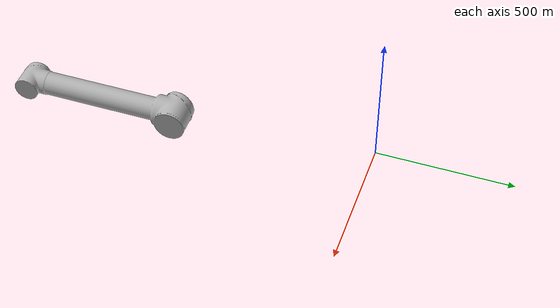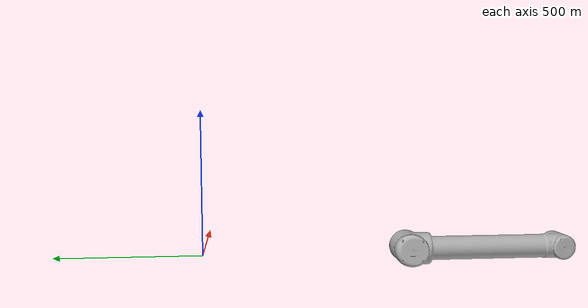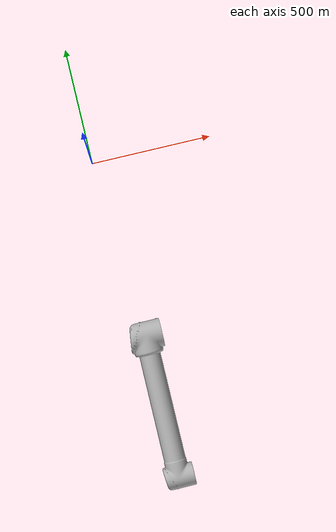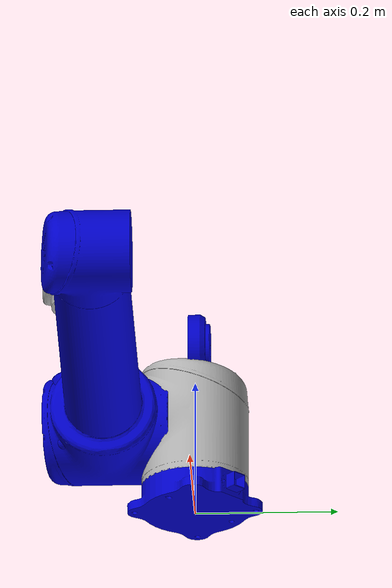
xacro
<?xml version="1.0"?>
<robot xmlns:xacro="http://www.ros.org/wiki/xacro"
       name="ur10" >

  <!-- common stuff -->
  <xacro:include filename="$(find ur_description)/urdf/gazebo.urdf.xacro" />

  <!-- ur10 -->
  <xacro:include filename="$(find ur_description)/urdf/ur10_limited.urdf.xacro" />

  <!-- arm -->
  <xacro:ur10_robot prefix="">
  </xacro:ur10_robot>

</robot>

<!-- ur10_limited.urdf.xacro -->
<robot xmlns:xacro="http://www.ros.org/wiki/xacro">

  <xacro:include filename="$(find ur_description)/urdf/ur10.transmission.xacro" />
  <xacro:include filename="$(find ur_description)/urdf/ur10.gazebo.xacro" />
  <xacro:include filename="$(find ur_description)/urdf/materials.urdf.xacro" />

  <property name="pi" value="3.14159265" />

  <!-- Inertia parameters -->
  <property name="base_mass" value="4.0" />
  <property name="shoulder_mass" value="3.7000" />
  <property name="upper_arm_mass" value="8.3930" />
  <property name="forearm_mass" value="2.2750" />
  <property name="wrist_1_mass" value="1.2190" />
  <property name="wrist_2_mass" value="1.2190" />
  <property name="wrist_3_mass" value="0.1879" />

  <property name="shoulder_cog" value="0.0 0.00193 -0.02561" />
  <property name="upper_arm_cog" value="0.0 -0.024201 0.2125" />
  <property name="forearm_cog" value="0.0 0.0265 0.11993" />
  <property name="wrist_1_cog" value="0.0 0.110949 0.01634" />
  <property name="wrist_2_cog" value="0.0 0.0018 0.11099" />
  <property name="wrist_3_cog" value="0.0 0.001159 0.0" />

  <!-- Kinematic model -->
  <property name="shoulder_height" value="0.128" />
  <property name="shoulder_offset" value="0.1704" />
  <property name="upper_arm_length" value="0.60186" />
  <property name="elbow_offset" value="0.12817" />
  <property name="forearm_length" value="0.56415" />
  <property name="wrist_1_length" value="0.11279" />
  <property name="wrist_2_length" value="0.11279" />
  <property name="wrist_3_length" value="0.0857" />

  <property name="shoulder_radius" value="0.060" />
  <property name="upper_arm_radius" value="0.054" />
  <property name="elbow_radius" value="0.060" />
  <property name="forearm_radius" value="0.040" />
  <property name="wrist_radius" value="0.045" />

  <!-- Collision model -->
  <property name="base_collision_length" value="0.160" />
  <property name="shoulder_collision_length" value="0.200" />
  <property name="shoulder_collision_offset" value="0.035" />
  <property name="elbow_collision_length" value="0.200" />
  <property name="elbow_collision_offset" value="0.035" />

  <xacro:macro name="ur10_robot" params="prefix">

  <link name="${prefix}base_link" >
    <visual>
      <geometry>
        <mesh filename="package://ur_description/meshes/ur10/visual/Base.stl" />
      </geometry>
      <origin xyz="0.0 0.0 0.003" rpy="0.0 0.0 ${3.0 * pi / 4.0}" />
      <material name="UR/Blue" />
    </visual>

    <collision>
      <geometry>
        <mesh filename="package://ur_description/meshes/ur10/collision/Base.stl" />
      </geometry>
      <origin xyz="0.0 0.0 0.003" rpy="0.0 0.0 ${3.0 * pi / 4.0}" />
    </collision>

    <inertial>
      <mass value="${base_mass}" />
      <inertia ixx="1.0" ixy="0.0" ixz="0.0" iyy="1.0" iyz="0.0" izz="1.0"/>
    </inertial>
  </link>

  <joint name="${prefix}shoulder_pan_joint" type="revolute">
    <parent link="${prefix}base_link" />
    <child link = "${prefix}shoulder_link" />
    <origin xyz="0.0 0.0 ${shoulder_height}" rpy="0.0 0.0 0.0" />
    <axis xyz="0.0 0.0 1.0" />
    <limit lower="${pi}" upper="${pi}" effort="330.0" velocity="2.16"/>
    <dynamics damping="1.2" friction="0.0"/>
  </joint>

  <link name="${prefix}shoulder_link">
    <visual>
      <geometry>
          <mesh filename="package://ur_description/meshes/ur10/visual/Shoulder.stl" />
      </geometry>
      <material name="UR/Grey" />
    </visual>

    <collision>
      <geometry>
        <mesh filename="package://ur_description/meshes/ur10/collision/Shoulder.stl" />
      </geometry>
    </collision>

    <inertial>
      <mass value="${shoulder_mass}" />
      <inertia ixx="1.0" ixy="0.0" ixz="0.0" iyy="1.0" iyz="0.0" izz="1.0"/>
      <origin xyz="${shoulder_cog}" rpy="0.0 0.0 0.0" />
    </inertial>
  </link>

  <joint name="${prefix}shoulder_lift_joint" type="revolute">
    <parent link="${prefix}shoulder_link" />
    <child link = "${prefix}upper_arm_link" />
    <origin xyz="0.0 ${shoulder_offset} 0.0" rpy="0.0 ${pi / 2.0} 0.0" />
    <axis xyz="0.0 1.0 0.0" />
    <limit lower="${pi}" upper="${pi}" effort="10.0" velocity="${pi}"/>
    <dynamics damping="1.2" friction="0.0"/>
  </joint>

  <link name="${prefix}upper_arm_link">
    <visual>
      <geometry>
        <mesh filename="package://ur_description/meshes/ur10/visual/UpperArm.stl" />
      </geometry>
      <origin xyz="0.0 0.0 0.0" rpy="0.0 0.0 0.0" />
      <material name="UR/Blue" />
    </visual>

    <collision>
      <geometry>
        <mesh filename="package://ur_description/meshes/ur10/collision/UpperArm.stl" />
      </geometry>
       <origin xyz="0.0 0.0 0.0" rpy="0.0 0.0 0.0" />
    </collision>

    <inertial>
      <mass value="${upper_arm_mass}" />
      <inertia ixx="1.0" ixy="0.0" ixz="0.0" iyy="1.0" iyz="0.0" izz="1.0"/>
      <origin xyz="${upper_arm_cog}" rpy="0.0 0.0 0.0" />
    </inertial>
  </link>

  <joint name="${prefix}elbow_joint" type="revolute">
    <parent link="${prefix}upper_arm_link" />
    <child link = "${prefix}forearm_link" />
    <origin xyz="0.0 ${-elbow_offset} ${upper_arm_length}" rpy="0.0 0.0 0.0" />
    <axis xyz="0.0 1.0 0.0" />
    <limit lower="${pi}" upper="${pi}" effort="150.0" velocity="${pi}"/>
    <dynamics damping="0.6" friction="0.0"/>
  </joint>

  <link name="${prefix}forearm_link">
    <visual>
       <geometry>
        <mesh filename="package://ur_description/meshes/ur10/visual/Forearm.stl" />
      </geometry>
      <material name="UR/Grey" />
    </visual>

    <collision>
      <geometry>
        <mesh filename="package://ur_description/meshes/ur10/collision/Forearm.stl" />
      </geometry>
    </collision>

    <inertial>
      <mass value="${forearm_mass}" />
      <origin xyz="${forearm_cog}" rpy="0.0 0.0 0.0" />
      <inertia ixx="1.0" ixy="0.0" ixz="0.0" iyy="1.0" iyz="0.0" izz="1.0"/>
    </inertial>
  </link>

  <joint name="${prefix}wrist_1_joint" type="revolute">
     <parent link="${prefix}forearm_link" />
    <child link = "${prefix}wrist_1_link" />
    <origin xyz="0.0 0.0 ${forearm_length}" rpy="0.0 ${pi / 2.0} 0.0" />
    <axis xyz="0.0 1.0 0.0" />
    <limit lower="${pi}" upper="${pi}" effort="54.0" velocity="${pi}"/>
    <dynamics damping="0.6" friction="0.0"/>
  </joint>

  <link name="${prefix}wrist_1_link">
    <visual>
      <geometry>
        <mesh filename="package://ur_description/meshes/ur10/visual/Wrist1.stl" />
      </geometry>
      <origin xyz="0.0 ${wrist_1_length} 0.0" rpy="0.0 0 0.0" />
      <material name="UR/Blue" />
    </visual>

    <collision>
      <geometry>
        <mesh filename="package://ur_description/meshes/ur10/collision/Wrist1.stl" />
      </geometry>
      <origin xyz="0.0 ${wrist_1_length} 0.0" rpy="0.0 0 0.0" />
    </collision>

    <inertial>
      <mass value="${wrist_1_mass}" />
      <origin xyz="${wrist_1_cog}" rpy="0.0 0.0 0.0" />
      <inertia ixx="1.0" ixy="0.0" ixz="0.0" iyy="1.0" iyz="0.0" izz="1.0"/>
    </inertial>
  </link>

    <joint name="${prefix}wrist_2_joint" type="revolute">
    <parent link="${prefix}wrist_1_link" />
    <child link = "${prefix}wrist_2_link" />
    <origin xyz="0.0 ${wrist_1_length} 0.0" rpy="0.0 0.0 0.0" />
    <axis xyz="0.0 0.0 1.0" />
    <limit lower="${pi}" upper="${pi}" effort="54.0" velocity="${pi}"/>
    <dynamics damping="0.6" friction="0.0"/>
  </joint>

  <link name="${prefix}wrist_2_link">
    <visual>
      <geometry>
        <mesh filename="package://ur_description/meshes/ur10/visual/Wrist2.stl" />
      </geometry>
      <origin xyz="0.0 0.0 ${wrist_2_length}" rpy="0.0 0.0 0.0" />
      <material name="UR/Grey" />
    </visual>

    <collision>
      <geometry>
        <mesh filename="package://ur_description/meshes/ur10/collision/Wrist2.stl" />
      </geometry>
      <origin xyz="0.0 0.0 ${wrist_2_length}" rpy="0.0 0.0 0.0" />
    </collision>

    <inertial>
      <mass value="${wrist_2_mass}" />
      <origin xyz="${wrist_2_cog}" rpy="0.0 0.0 0.0" />
      <inertia ixx="1.0" ixy="0.0" ixz="0.0" iyy="1.0" iyz="0.0" izz="1.0"/>
    </inertial>
  </link>

  <joint name="${prefix}wrist_3_joint" type="revolute">
    <parent link="${prefix}wrist_2_link" />
    <child link = "${prefix}wrist_3_link" />
    <origin xyz="0.0 0.0 ${wrist_2_length}" rpy="0.0 0.0 0.0" />
    <axis xyz="0.0 1.0 0.0" />
    <limit lower="${pi}" upper="${pi}" effort="54.0" velocity="${pi}"/>
    <dynamics damping="0.6" friction="0.0"/>
  </joint>

  <link name="${prefix}wrist_3_link">
    <visual>
      <geometry>
        <mesh filename="package://ur_description/meshes/ur10/visual/Wrist3.stl" />
      </geometry>
       <origin xyz="0.0 ${wrist_3_length} 0.0" rpy="0.0 0.0 0" />
      <material name="UR/Blue" />
    </visual>

    <collision>
      <geometry>
        <mesh filename="package://ur_description/meshes/ur10/collision/Wrist3.stl" />
      </geometry>
      <origin xyz="0.0 ${wrist_3_length} 0.0" rpy="0.0 0.0 0" />
    </collision>

    <inertial>
       <mass value="${wrist_3_mass}" />
      <origin xyz="${wrist_3_cog}" rpy="0.0 0.0 0.0" />
      <inertia ixx="1.0" ixy="0.0" ixz="0.0" iyy="1.0" iyz="0.0" izz="1.0"/>
    </inertial>
  </link>

  <joint name="${prefix}ee_fixed_joint" type="fixed">
    <parent link="${prefix}wrist_3_link" />
    <child link = "${prefix}ee_link" />
    <origin xyz="0.0 ${wrist_3_length} 0.0" rpy="0.0 0.0 ${pi/2.0}" />
  </joint>

  <link name="${prefix}ee_link" />

  <xacro:ur10_arm_transmission prefix="${prefix}" />
  <xacro:ur10_arm_gazebo prefix="${prefix}" />

  </xacro:macro>
</robot>

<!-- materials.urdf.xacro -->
<robot>

  <material name="UR/Blue">
    <color rgba="0.0 0.0 0.8 1.0"/>
  </material>

  <material name="UR/Grey">
    <color rgba="0.7 0.7 0.7 1.0"/>
  </material>

</robot>
